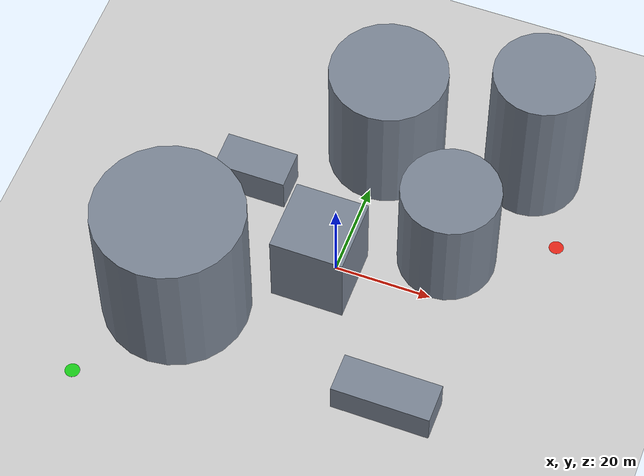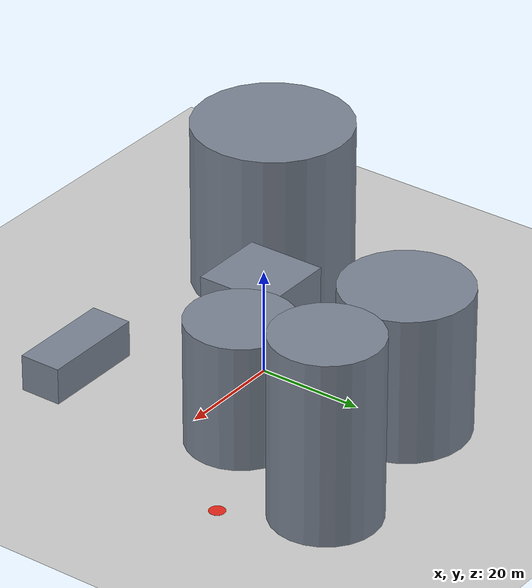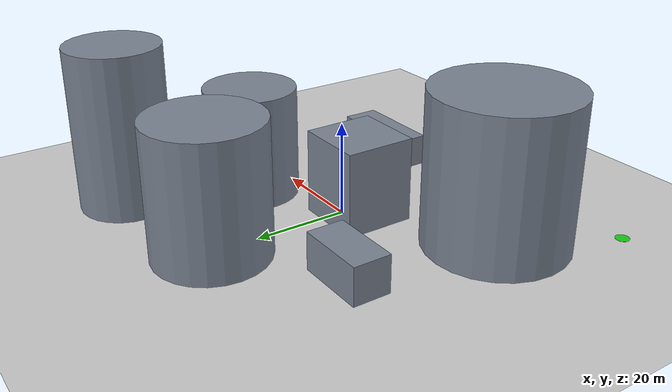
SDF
<?xml version="1.0"?>
<sdf version="1.6"><world name="logistics_6_mountain_medical">
  <physics name="default_physics" type="ode"><max_step_size>0.004</max_step_size><real_time_factor>1</real_time_factor><real_time_update_rate>250</real_time_update_rate><magnetic_field>6.0e-6 2.3e-5 -4.2e-5</magnetic_field></physics>
  <gravity>0 0 -9.8066</gravity>
  <include><uri>model://sun</uri></include>
  <include><uri>model://ground_plane</uri></include>
  <spherical_coordinates><surface_model>EARTH_WGS84</surface_model><latitude_deg>47.397742</latitude_deg><longitude_deg>8.545594</longitude_deg><elevation>488</elevation><heading_deg>0</heading_deg></spherical_coordinates>
<model name="obstacle_00_peak_a"><static>true</static><pose>-27.000 -18.000 16.000 0 0 0</pose><link name="link"><collision name="collision"><geometry><cylinder><radius>15.000</radius><length>32.000</length></cylinder></geometry></collision><visual name="visual"><geometry><cylinder><radius>15.000</radius><length>32.000</length></cylinder></geometry><material><ambient>0.48 0.52 0.58 1</ambient><diffuse>0.48 0.52 0.58 1</diffuse></material></visual></link></model>
<model name="obstacle_01_peak_b"><static>true</static><pose>20.000 10.000 12.000 0 0 0</pose><link name="link"><collision name="collision"><geometry><cylinder><radius>10.000</radius><length>24.000</length></cylinder></geometry></collision><visual name="visual"><geometry><cylinder><radius>10.000</radius><length>24.000</length></cylinder></geometry><material><ambient>0.48 0.52 0.58 1</ambient><diffuse>0.48 0.52 0.58 1</diffuse></material></visual></link></model>
<model name="obstacle_02_peak_c"><static>true</static><pose>0.000 30.000 14.000 0 0 0</pose><link name="link"><collision name="collision"><geometry><cylinder><radius>12.000</radius><length>28.000</length></cylinder></geometry></collision><visual name="visual"><geometry><cylinder><radius>12.000</radius><length>28.000</length></cylinder></geometry><material><ambient>0.48 0.52 0.58 1</ambient><diffuse>0.48 0.52 0.58 1</diffuse></material></visual></link></model>
<model name="obstacle_03_gorge_bridge"><static>true</static><pose>-22.500 14.000 4.000 0 0 0</pose><link name="link"><collision name="collision"><geometry><box><size>15.000 8.000 8.000</size></box></geometry></collision><visual name="visual"><geometry><box><size>15.000 8.000 8.000</size></box></geometry><material><ambient>0.48 0.52 0.58 1</ambient><diffuse>0.48 0.52 0.58 1</diffuse></material></visual></link></model>
<model name="obstacle_04_cliff_road"><static>true</static><pose>20.000 -26.000 3.500 0 0 0</pose><link name="link"><collision name="collision"><geometry><box><size>20.000 8.000 7.000</size></box></geometry></collision><visual name="visual"><geometry><box><size>20.000 8.000 7.000</size></box></geometry><material><ambient>0.48 0.52 0.58 1</ambient><diffuse>0.48 0.52 0.58 1</diffuse></material></visual></link></model>
<model name="obstacle_05_signal_tower"><static>true</static><pose>30.000 35.000 17.500 0 0 0</pose><link name="link"><collision name="collision"><geometry><cylinder><radius>10.000</radius><length>35.000</length></cylinder></geometry></collision><visual name="visual"><geometry><cylinder><radius>10.000</radius><length>35.000</length></cylinder></geometry><material><ambient>0.48 0.52 0.58 1</ambient><diffuse>0.48 0.52 0.58 1</diffuse></material></visual></link></model>
<model name="obstacle_06_forest"><static>true</static><pose>-2.500 -2.500 9.000 0 0 0</pose><link name="link"><collision name="collision"><geometry><box><size>15.000 15.000 18.000</size></box></geometry></collision><visual name="visual"><geometry><box><size>15.000 15.000 18.000</size></box></geometry><material><ambient>0.48 0.52 0.58 1</ambient><diffuse>0.48 0.52 0.58 1</diffuse></material></visual></link></model>
<model name="start_zone"><static>true</static><pose>-40.000 -40.000 -0.009 0 0 0</pose><link name="link"><visual name="visual"><cast_shadows>false</cast_shadows><geometry><cylinder><radius>1.5</radius><length>0.02</length></cylinder></geometry><material><ambient>0.1 0.8 0.1 1</ambient><diffuse>0.1 0.8 0.1 1</diffuse></material></visual></link></model>
<model name="goal_zone"><static>true</static><pose>40.000 20.000 -0.009 0 0 0</pose><link name="link"><visual name="visual"><cast_shadows>false</cast_shadows><geometry><cylinder><radius>1.5</radius><length>0.02</length></cylinder></geometry><material><ambient>0.9 0.15 0.1 1</ambient><diffuse>0.9 0.15 0.1 1</diffuse></material></visual></link></model>
</world></sdf>
